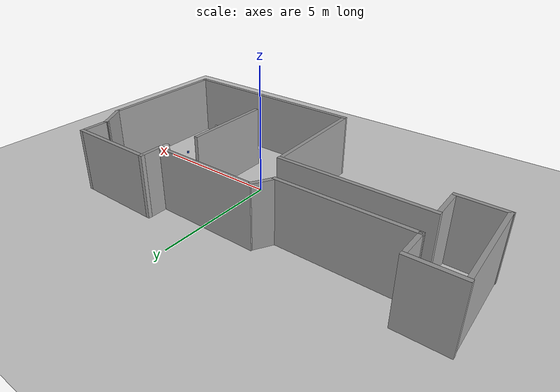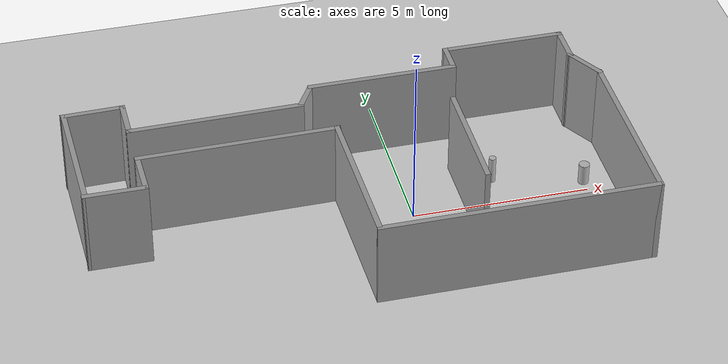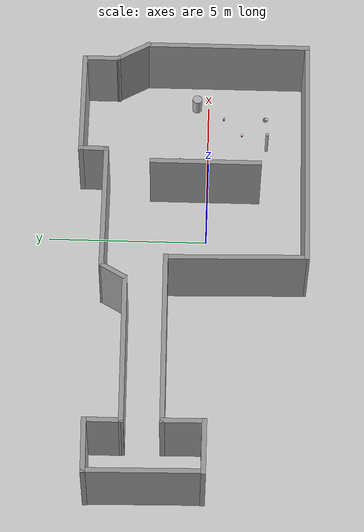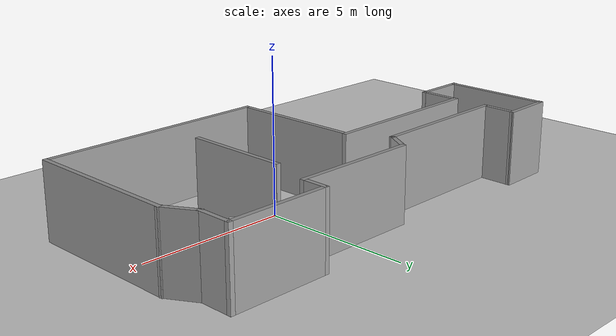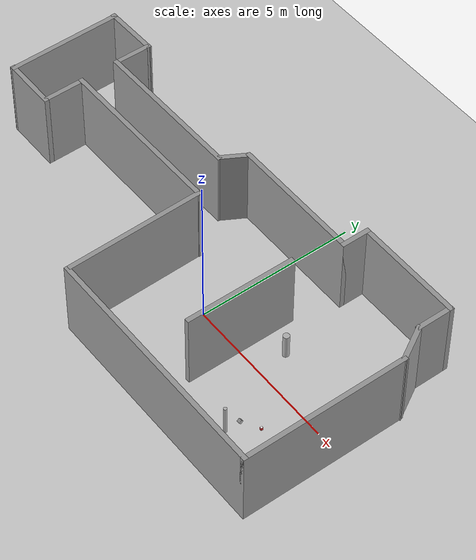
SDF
<sdf version='1.10'>
  <world name='default'>
    <plugin name='gz::sim::systems::Physics' filename='gz-sim-physics-system'/>
    <plugin name='gz::sim::systems::UserCommands' filename='gz-sim-user-commands-system'/>
    <plugin name='gz::sim::systems::SceneBroadcaster' filename='gz-sim-scene-broadcaster-system'/>
    <plugin name='gz::sim::systems::Sensors' filename='gz-sim-sensors-system'>
      <render_engine>ogre2</render_engine>
    </plugin>
    <plugin name='gz::sim::systems::Imu' filename='gz-sim-imu-system'/>
    <scene>
      <shadows>false</shadows>
      <ambient>0.400000006 0.400000006 0.400000006 1</ambient>
      <background>0.699999988 0.699999988 0.699999988 1</background>
    </scene>
    <physics name='3ms' type='ode'>
      <max_step_size>0.0030000000000000001</max_step_size>
      <real_time_factor>1</real_time_factor>
      <real_time_update_rate>1000</real_time_update_rate>
    </physics>
    <gravity>0 0 -9.8000000000000007</gravity>
    <magnetic_field>5.5644999999999998e-06 2.2875799999999999e-05 -4.2388400000000002e-05</magnetic_field>
    <atmosphere type='adiabatic'/>
    <model name='ground_plane'>
      <static>true</static>
      <link name='link'>
        <collision name='collision'>
          <geometry>
            <plane>
              <normal>0 0 1</normal>
              <size>100 100</size>
            </plane>
          </geometry>
          <max_contacts>10</max_contacts>
          <surface>
            <friction>
              <ode/>
            </friction>
            <bounce/>
            <contact/>
          </surface>
        </collision>
        <visual name='visual'>
          <geometry>
            <plane>
              <normal>0 0 1</normal>
              <size>100 100</size>
            </plane>
          </geometry>
          <material>
            <ambient>0.800000012 0.800000012 0.800000012 1</ambient>
            <diffuse>0.800000012 0.800000012 0.800000012 1</diffuse>
            <specular>0.800000012 0.800000012 0.800000012 1</specular>
          </material>
        </visual>
        <pose>0 0 0 0 0 0</pose>
        <inertial>
          <pose>0 0 0 0 0 0</pose>
          <mass>1</mass>
          <inertia>
            <ixx>1</ixx>
            <ixy>0</ixy>
            <ixz>0</ixz>
            <iyy>1</iyy>
            <iyz>0</iyz>
            <izz>1</izz>
          </inertia>
        </inertial>
        <enable_wind>false</enable_wind>
      </link>
      <pose>0 0 0 0 0 0</pose>
      <self_collide>false</self_collide>
    </model>
    <model name='room_walls'>
      <pose>-1.5562999999999976 0.44893100000000397 0 0 0 7.7715611723760958e-16</pose>
      <link name='Wall_1'>
        <collision name='Wall_1_Collision'>
          <geometry>
            <box>
              <size>1.2 0.14999999999999999 2.5</size>
            </box>
          </geometry>
          <pose>0 0 1.25 0 0 0</pose>
          <surface>
            <friction>
              <ode/>
            </friction>
            <bounce/>
            <contact/>
          </surface>
        </collision>
        <visual name='Wall_1_Visual'>
          <pose>0 0 1.25 0 0 0</pose>
          <geometry>
            <box>
              <size>1.2 0.14999999999999999 2.5</size>
            </box>
          </geometry>
          <material>
            <script>
              <uri>file://media/materials/scripts/gazebo.material</uri>
              <name>Gazebo/Grey</name>
            </script>
            <ambient>1 1 1 1</ambient>
          </material>
          <meta>
            <layer>0</layer>
          </meta>
        </visual>
        <pose>-5.7910700000000004 2.4936799999999999 0 0 0 1.5708</pose>
        <inertial>
          <pose>0 0 0 0 0 0</pose>
          <mass>1</mass>
          <inertia>
            <ixx>1</ixx>
            <ixy>0</ixy>
            <ixz>0</ixz>
            <iyy>1</iyy>
            <iyz>0</iyz>
            <izz>1</izz>
          </inertia>
        </inertial>
        <enable_wind>false</enable_wind>
      </link>
      <link name='Wall_2'>
        <collision name='Wall_2_Collision'>
          <geometry>
            <box>
              <size>1.7925599999999999 0.14999999999999999 2.5</size>
            </box>
          </geometry>
          <pose>0 0 1.25 0 0 0</pose>
          <surface>
            <friction>
              <ode/>
            </friction>
            <bounce/>
            <contact/>
          </surface>
        </collision>
        <visual name='Wall_2_Visual'>
          <pose>0 0 1.25 0 0 0</pose>
          <geometry>
            <box>
              <size>1.7925599999999999 0.14999999999999999 2.5</size>
            </box>
          </geometry>
          <material>
            <script>
              <uri>file://media/materials/scripts/gazebo.material</uri>
              <name>Gazebo/Grey</name>
            </script>
            <ambient>1 1 1 1</ambient>
          </material>
          <meta>
            <layer>0</layer>
          </meta>
        </visual>
        <pose>-6.6121599999999994 3.0463100000000005 0 0 0 -3.1203000000000007</pose>
        <inertial>
          <pose>0 0 0 0 0 0</pose>
          <mass>1</mass>
          <inertia>
            <ixx>1</ixx>
            <ixy>0</ixy>
            <ixz>0</ixz>
            <iyy>1</iyy>
            <iyz>0</iyz>
            <izz>1</izz>
          </inertia>
        </inertial>
        <enable_wind>false</enable_wind>
      </link>
      <link name='Wall_3'>
        <collision name='Wall_3_Collision'>
          <geometry>
            <box>
              <size>3.6856499999999999 0.14999999999999999 2.5</size>
            </box>
          </geometry>
          <pose>0 0 1.25 0 0 0</pose>
          <surface>
            <friction>
              <ode/>
            </friction>
            <bounce/>
            <contact/>
          </surface>
        </collision>
        <visual name='Wall_3_Visual'>
          <pose>0 0 1.25 0 0 0</pose>
          <geometry>
            <box>
              <size>3.6856499999999999 0.14999999999999999 2.5</size>
            </box>
          </geometry>
          <material>
            <script>
              <uri>file://media/materials/scripts/gazebo.material</uri>
              <name>Gazebo/Grey</name>
            </script>
            <ambient>1 1 1 1</ambient>
          </material>
          <meta>
            <layer>0</layer>
          </meta>
        </visual>
        <pose>-7.3843400000000035 1.2612300000000016 0 0 0 -1.5545000000000004</pose>
        <inertial>
          <pose>0 0 0 0 0 0</pose>
          <mass>1</mass>
          <inertia>
            <ixx>1</ixx>
            <ixy>0</ixy>
            <ixz>0</ixz>
            <iyy>1</iyy>
            <iyz>0</iyz>
            <izz>1</izz>
          </inertia>
        </inertial>
        <enable_wind>false</enable_wind>
      </link>
      <link name='Wall_4'>
        <collision name='Wall_4_Collision'>
          <geometry>
            <box>
              <size>1.7774399999999999 0.14999999999999999 2.5</size>
            </box>
          </geometry>
          <pose>0 0 1.25 0 0 0</pose>
          <surface>
            <friction>
              <ode/>
            </friction>
            <bounce/>
            <contact/>
          </surface>
        </collision>
        <visual name='Wall_4_Visual'>
          <pose>0 0 1.25 0 0 0</pose>
          <geometry>
            <box>
              <size>1.7774399999999999 0.14999999999999999 2.5</size>
            </box>
          </geometry>
          <material>
            <script>
              <uri>file://media/materials/scripts/gazebo.material</uri>
              <name>Gazebo/Grey</name>
            </script>
            <ambient>1 1 1 1</ambient>
          </material>
          <meta>
            <layer>0</layer>
          </meta>
        </visual>
        <pose>-6.5619300000000038 -0.50898599999999883 0 0 0 -0.0032240000000007783</pose>
        <inertial>
          <pose>0 0 0 0 0 0</pose>
          <mass>1</mass>
          <inertia>
            <ixx>1</ixx>
            <ixy>0</ixy>
            <ixz>0</ixz>
            <iyy>1</iyy>
            <iyz>0</iyz>
            <izz>1</izz>
          </inertia>
        </inertial>
        <enable_wind>false</enable_wind>
      </link>
      <link name='Wall_5'>
        <collision name='Wall_5_Collision'>
          <geometry>
            <box>
              <size>1.3567199999999999 0.14999999999999999 2.5</size>
            </box>
          </geometry>
          <pose>0 0 1.25 0 0 0</pose>
          <surface>
            <friction>
              <ode/>
            </friction>
            <bounce/>
            <contact/>
          </surface>
        </collision>
        <visual name='Wall_5_Visual'>
          <pose>0 0 1.25 0 0 0</pose>
          <geometry>
            <box>
              <size>1.3567199999999999 0.14999999999999999 2.5</size>
            </box>
          </geometry>
          <material>
            <script>
              <uri>file://media/materials/scripts/gazebo.material</uri>
              <name>Gazebo/Grey</name>
            </script>
            <ambient>1 1 1 1</ambient>
          </material>
          <meta>
            <layer>0</layer>
          </meta>
        </visual>
        <pose>-5.7582700000000031 0.13679500000000056 0 0 0 1.5845999999999993</pose>
        <inertial>
          <pose>0 0 0 0 0 0</pose>
          <mass>1</mass>
          <inertia>
            <ixx>1</ixx>
            <ixy>0</ixy>
            <ixz>0</ixz>
            <iyy>1</iyy>
            <iyz>0</iyz>
            <izz>1</izz>
          </inertia>
        </inertial>
        <enable_wind>false</enable_wind>
      </link>
      <link name='Wall_6'>
        <collision name='Wall_6_Collision'>
          <geometry>
            <box>
              <size>5.6466399999999997 0.14999999999999999 2.5</size>
            </box>
          </geometry>
          <pose>0 0 1.25 0 0 0</pose>
          <surface>
            <friction>
              <ode/>
            </friction>
            <bounce/>
            <contact/>
          </surface>
        </collision>
        <visual name='Wall_6_Visual'>
          <pose>0 0 1.25 0 0 0</pose>
          <geometry>
            <box>
              <size>5.6466399999999997 0.14999999999999999 2.5</size>
            </box>
          </geometry>
          <material>
            <script>
              <uri>file://media/materials/scripts/gazebo.material</uri>
              <name>Gazebo/Grey</name>
            </script>
            <ambient>1 1 1 1</ambient>
          </material>
          <meta>
            <layer>0</layer>
          </meta>
        </visual>
        <pose>-3.0200900000000019 0.76639699999999833 0 0 0 0.0077959999999992202</pose>
        <inertial>
          <pose>0 0 0 0 0 0</pose>
          <mass>1</mass>
          <inertia>
            <ixx>1</ixx>
            <ixy>0</ixy>
            <ixz>0</ixz>
            <iyy>1</iyy>
            <iyz>0</iyz>
            <izz>1</izz>
          </inertia>
        </inertial>
        <enable_wind>false</enable_wind>
      </link>
      <link name='Wall_7'>
        <collision name='Wall_7_Collision'>
          <geometry>
            <box>
              <size>4.3899800000000004 0.14999999999999999 2.5</size>
            </box>
          </geometry>
          <pose>0 0 1.25 0 0 0</pose>
          <surface>
            <friction>
              <ode/>
            </friction>
            <bounce/>
            <contact/>
          </surface>
        </collision>
        <visual name='Wall_7_Visual'>
          <pose>0 0 1.25 0 0 0</pose>
          <geometry>
            <box>
              <size>4.3899800000000004 0.14999999999999999 2.5</size>
            </box>
          </geometry>
          <material>
            <script>
              <uri>file://media/materials/scripts/gazebo.material</uri>
              <name>Gazebo/Grey</name>
            </script>
            <ambient>1 1 1 1</ambient>
          </material>
          <meta>
            <layer>0</layer>
          </meta>
        </visual>
        <pose>-0.24229100000000492 -1.3416200000000038 0 0 0 -1.5489100000000007</pose>
        <inertial>
          <pose>0 0 0 0 0 0</pose>
          <mass>1</mass>
          <inertia>
            <ixx>1</ixx>
            <ixy>0</ixy>
            <ixz>0</ixz>
            <iyy>1</iyy>
            <iyz>0</iyz>
            <izz>1</izz>
          </inertia>
        </inertial>
        <enable_wind>false</enable_wind>
      </link>
      <link name='Wall_8'>
        <collision name='Wall_8_Collision'>
          <geometry>
            <box>
              <size>7.75 0.14999999999999999 2.5</size>
            </box>
          </geometry>
          <pose>0 0 1.25 0 0 0</pose>
          <surface>
            <friction>
              <ode/>
            </friction>
            <bounce/>
            <contact/>
          </surface>
        </collision>
        <visual name='Wall_8_Visual'>
          <pose>0 0 1.25 0 0 0</pose>
          <geometry>
            <box>
              <size>7.75 0.14999999999999999 2.5</size>
            </box>
          </geometry>
          <material>
            <script>
              <uri>file://media/materials/scripts/gazebo.material</uri>
              <name>Gazebo/Grey</name>
            </script>
            <ambient>1 1 1 1</ambient>
          </material>
          <meta>
            <layer>0</layer>
          </meta>
        </visual>
        <pose>3.607389999999993 -3.5510700000000068 0 0 0 -7.7715611723760958e-16</pose>
        <inertial>
          <pose>0 0 0 0 0 0</pose>
          <mass>1</mass>
          <inertia>
            <ixx>1</ixx>
            <ixy>0</ixy>
            <ixz>0</ixz>
            <iyy>1</iyy>
            <iyz>0</iyz>
            <izz>1</izz>
          </inertia>
        </inertial>
        <enable_wind>false</enable_wind>
      </link>
      <link name='Wall_9'>
        <collision name='Wall_9_Collision'>
          <geometry>
            <box>
              <size>5.25 0.14999999999999999 2.5</size>
            </box>
          </geometry>
          <pose>0 0 1.25 0 0 0</pose>
          <surface>
            <friction>
              <ode/>
            </friction>
            <bounce/>
            <contact/>
          </surface>
        </collision>
        <visual name='Wall_9_Visual'>
          <pose>0 0 1.25 0 0 0</pose>
          <geometry>
            <box>
              <size>5.25 0.14999999999999999 2.5</size>
            </box>
          </geometry>
          <material>
            <script>
              <uri>file://media/materials/scripts/gazebo.material</uri>
              <name>Gazebo/Grey</name>
            </script>
            <ambient>1 1 1 1</ambient>
          </material>
          <meta>
            <layer>0</layer>
          </meta>
        </visual>
        <pose>7.4073899999999959 -1.0010700000000092 0 0 0 1.5707999999999998</pose>
        <inertial>
          <pose>0 0 0 0 0 0</pose>
          <mass>1</mass>
          <inertia>
            <ixx>1</ixx>
            <ixy>0</ixy>
            <ixz>0</ixz>
            <iyy>1</iyy>
            <iyz>0</iyz>
            <izz>1</izz>
          </inertia>
        </inertial>
        <enable_wind>false</enable_wind>
      </link>
      <link name='Wall_10'>
        <collision name='Wall_10_Collision'>
          <geometry>
            <box>
              <size>1.25 0.14999999999999999 2.5</size>
            </box>
          </geometry>
          <pose>0 0 1.25 0 0 0</pose>
          <surface>
            <friction>
              <ode/>
            </friction>
            <bounce/>
            <contact/>
          </surface>
        </collision>
        <visual name='Wall_10_Visual'>
          <pose>0 0 1.25 0 0 0</pose>
          <geometry>
            <box>
              <size>1.25 0.14999999999999999 2.5</size>
            </box>
          </geometry>
          <material>
            <script>
              <uri>file://media/materials/scripts/gazebo.material</uri>
              <name>Gazebo/Grey</name>
            </script>
            <ambient>1 1 1 1</ambient>
          </material>
          <meta>
            <layer>0</layer>
          </meta>
        </visual>
        <pose>7.1323899999999973 2.0252399999999899 0 0 0 2.0943999999999989</pose>
        <inertial>
          <pose>0 0 0 0 0 0</pose>
          <mass>1</mass>
          <inertia>
            <ixx>1</ixx>
            <ixy>0</ixy>
            <ixz>0</ixz>
            <iyy>1</iyy>
            <iyz>0</iyz>
            <izz>1</izz>
          </inertia>
        </inertial>
        <enable_wind>false</enable_wind>
      </link>
      <link name='Wall_11'>
        <collision name='Wall_11_Collision'>
          <geometry>
            <box>
              <size>1.2011400000000001 0.14999999999999999 2.5</size>
            </box>
          </geometry>
          <pose>0 0 1.25 0 0 0</pose>
          <surface>
            <friction>
              <ode/>
            </friction>
            <bounce/>
            <contact/>
          </surface>
        </collision>
        <visual name='Wall_11_Visual'>
          <pose>0 0 1.25 0 0 0</pose>
          <geometry>
            <box>
              <size>1.2011400000000001 0.14999999999999999 2.5</size>
            </box>
          </geometry>
          <material>
            <script>
              <uri>file://media/materials/scripts/gazebo.material</uri>
              <name>Gazebo/Grey</name>
            </script>
            <ambient>1 1 1 1</ambient>
          </material>
          <meta>
            <layer>0</layer>
          </meta>
        </visual>
        <pose>6.8573899999999988 3.0271299999999899 0 0 0 1.5707999999999998</pose>
        <inertial>
          <pose>0 0 0 0 0 0</pose>
          <mass>1</mass>
          <inertia>
            <ixx>1</ixx>
            <ixy>0</ixy>
            <ixz>0</ixz>
            <iyy>1</iyy>
            <iyz>0</iyz>
            <izz>1</izz>
          </inertia>
        </inertial>
        <enable_wind>false</enable_wind>
      </link>
      <link name='Wall_12'>
        <collision name='Wall_12_Collision'>
          <geometry>
            <box>
              <size>3.5 0.14999999999999999 2.5</size>
            </box>
          </geometry>
          <pose>0 0 1.25 0 0 0</pose>
          <surface>
            <friction>
              <ode/>
            </friction>
            <bounce/>
            <contact/>
          </surface>
        </collision>
        <visual name='Wall_12_Visual'>
          <pose>0 0 1.25 0 0 0</pose>
          <geometry>
            <box>
              <size>3.5 0.14999999999999999 2.5</size>
            </box>
          </geometry>
          <material>
            <script>
              <uri>file://media/materials/scripts/gazebo.material</uri>
              <name>Gazebo/Grey</name>
            </script>
            <ambient>1 1 1 1</ambient>
          </material>
          <meta>
            <layer>0</layer>
          </meta>
        </visual>
        <pose>5.1823899999999981 3.5526899999999912 0 0 0 3.141589999999999</pose>
        <inertial>
          <pose>0 0 0 0 0 0</pose>
          <mass>1</mass>
          <inertia>
            <ixx>1</ixx>
            <ixy>0</ixy>
            <ixz>0</ixz>
            <iyy>1</iyy>
            <iyz>0</iyz>
            <izz>1</izz>
          </inertia>
        </inertial>
        <enable_wind>false</enable_wind>
      </link>
      <link name='Wall_13'>
        <collision name='Wall_13_Collision'>
          <geometry>
            <box>
              <size>0.95113599999999998 0.14999999999999999 2.5</size>
            </box>
          </geometry>
          <pose>0 0 1.25 0 0 0</pose>
          <surface>
            <friction>
              <ode/>
            </friction>
            <bounce/>
            <contact/>
          </surface>
        </collision>
        <visual name='Wall_13_Visual'>
          <pose>0 0 1.25 0 0 0</pose>
          <geometry>
            <box>
              <size>0.95113599999999998 0.14999999999999999 2.5</size>
            </box>
          </geometry>
          <material>
            <script>
              <uri>file://media/materials/scripts/gazebo.material</uri>
              <name>Gazebo/Grey</name>
            </script>
            <ambient>1 1 1 1</ambient>
          </material>
          <meta>
            <layer>0</layer>
          </meta>
        </visual>
        <pose>3.5073899999999982 3.1521299999999925 0 0 0 -1.5708000000000011</pose>
        <inertial>
          <pose>0 0 0 0 0 0</pose>
          <mass>1</mass>
          <inertia>
            <ixx>1</ixx>
            <ixy>0</ixy>
            <ixz>0</ixz>
            <iyy>1</iyy>
            <iyz>0</iyz>
            <izz>1</izz>
          </inertia>
        </inertial>
        <enable_wind>false</enable_wind>
      </link>
      <link name='Wall_14'>
        <collision name='Wall_14_Collision'>
          <geometry>
            <box>
              <size>4.25 0.14999999999999999 2.5</size>
            </box>
          </geometry>
          <pose>0 0 1.25 0 0 0</pose>
          <surface>
            <friction>
              <ode/>
            </friction>
            <bounce/>
            <contact/>
          </surface>
        </collision>
        <visual name='Wall_14_Visual'>
          <pose>0 0 1.25 0 0 0</pose>
          <geometry>
            <box>
              <size>4.25 0.14999999999999999 2.5</size>
            </box>
          </geometry>
          <material>
            <script>
              <uri>file://media/materials/scripts/gazebo.material</uri>
              <name>Gazebo/Grey</name>
            </script>
            <ambient>1 1 1 1</ambient>
          </material>
          <meta>
            <layer>0</layer>
          </meta>
        </visual>
        <pose>1.4573899999999982 2.7515599999999942 0 0 0 3.141589999999999</pose>
        <inertial>
          <pose>0 0 0 0 0 0</pose>
          <mass>1</mass>
          <inertia>
            <ixx>1</ixx>
            <ixy>0</ixy>
            <ixz>0</ixz>
            <iyy>1</iyy>
            <iyz>0</iyz>
            <izz>1</izz>
          </inertia>
        </inertial>
        <enable_wind>false</enable_wind>
      </link>
      <link name='Wall_15'>
        <collision name='Wall_15_Collision'>
          <geometry>
            <box>
              <size>0.90000000000000002 0.14999999999999999 2.5</size>
            </box>
          </geometry>
          <pose>0 0 1.25 0 0 0</pose>
          <surface>
            <friction>
              <ode/>
            </friction>
            <bounce/>
            <contact/>
          </surface>
        </collision>
        <visual name='Wall_15_Visual'>
          <pose>0 0 1.25 0 0 0</pose>
          <geometry>
            <box>
              <size>0.90000000000000002 0.14999999999999999 2.5</size>
            </box>
          </geometry>
          <material>
            <script>
              <uri>file://media/materials/scripts/gazebo.material</uri>
              <name>Gazebo/Grey</name>
            </script>
            <ambient>1 1 1 1</ambient>
          </material>
          <meta>
            <layer>0</layer>
          </meta>
        </visual>
        <pose>-0.80511200000000205 2.3834999999999962 0 0 0 -2.0944000000000007</pose>
        <inertial>
          <pose>0 0 0 0 0 0</pose>
          <mass>1</mass>
          <inertia>
            <ixx>1</ixx>
            <ixy>0</ixy>
            <ixz>0</ixz>
            <iyy>1</iyy>
            <iyz>0</iyz>
            <izz>1</izz>
          </inertia>
        </inertial>
        <enable_wind>false</enable_wind>
      </link>
      <link name='Wall_16'>
        <collision name='Wall_16_Collision'>
          <geometry>
            <box>
              <size>4.9237299999999999 0.14999999999999999 2.5</size>
            </box>
          </geometry>
          <pose>0 0 1.25 0 0 0</pose>
          <surface>
            <friction>
              <ode/>
            </friction>
            <bounce/>
            <contact/>
          </surface>
        </collision>
        <visual name='Wall_16_Visual'>
          <pose>0 0 1.25 0 0 0</pose>
          <geometry>
            <box>
              <size>4.9237299999999999 0.14999999999999999 2.5</size>
            </box>
          </geometry>
          <material>
            <script>
              <uri>file://media/materials/scripts/gazebo.material</uri>
              <name>Gazebo/Grey</name>
            </script>
            <ambient>1 1 1 1</ambient>
          </material>
          <meta>
            <layer>0</layer>
          </meta>
        </visual>
        <pose>-3.4043400000000017 1.9896199999999977 0 0 0 -3.1307700000000009</pose>
        <inertial>
          <pose>0 0 0 0 0 0</pose>
          <mass>1</mass>
          <inertia>
            <ixx>1</ixx>
            <ixy>0</ixy>
            <ixz>0</ixz>
            <iyy>1</iyy>
            <iyz>0</iyz>
            <izz>1</izz>
          </inertia>
        </inertial>
        <enable_wind>false</enable_wind>
      </link>
      <link name='Wall_17'>
        <collision name='Wall_17_Collision'>
          <geometry>
            <box>
              <size>3.5 0.14999999999999999 2.5</size>
            </box>
          </geometry>
          <pose>0 0 1.25 0 0 0</pose>
          <surface>
            <friction>
              <ode/>
            </friction>
            <bounce/>
            <contact/>
          </surface>
        </collision>
        <visual name='Wall_17_Visual'>
          <pose>0 0 1.25 0 0 0</pose>
          <geometry>
            <box>
              <size>3.5 0.14999999999999999 2.5</size>
            </box>
          </geometry>
          <material>
            <script>
              <uri>file://media/materials/scripts/gazebo.material</uri>
              <name>Gazebo/Grey</name>
            </script>
            <ambient>1 1 1 1</ambient>
          </material>
          <meta>
            <layer>0</layer>
          </meta>
        </visual>
        <pose>3.1087499999999957 -0.3783420000000064 0 0 0 -1.5708000000000011</pose>
        <inertial>
          <pose>0 0 0 0 0 0</pose>
          <mass>1</mass>
          <inertia>
            <ixx>1</ixx>
            <ixy>0</ixy>
            <ixz>0</ixz>
            <iyy>1</iyy>
            <iyz>0</iyz>
            <izz>1</izz>
          </inertia>
        </inertial>
        <enable_wind>false</enable_wind>
      </link>
      <static>true</static>
      <self_collide>false</self_collide>
    </model>
    <model name='external_camera'>
      <static>true</static>
      <link name='link'>
        <pose>4.0300000000000002 -1.8300000000000001 1 -1.7860444350881736e-16 0.89999999999999991 1.6499999999999997</pose>
        <inertial>
          <mass>0.10000000000000001</mass>
          <inertia>
            <ixx>0.00016666700000000001</ixx>
            <iyy>0.00016666700000000001</iyy>
            <izz>0.00016666700000000001</izz>
            <ixy>0</ixy>
            <ixz>0</ixz>
            <iyz>0</iyz>
          </inertia>
          <pose>0 0 0 0 0 0</pose>
        </inertial>
        <collision name='collision'>
          <geometry>
            <box>
              <size>0.10000000000000001 0.10000000000000001 0.10000000000000001</size>
            </box>
          </geometry>
          <surface>
            <friction>
              <ode/>
            </friction>
            <bounce/>
            <contact/>
          </surface>
        </collision>
        <visual name='visual'>
          <geometry>
            <box>
              <size>0.10000000000000001 0.10000000000000001 0.10000000000000001</size>
            </box>
          </geometry>
        </visual>
        <sensor name='depth_camera' type='depth_camera'>
          <pose>0 -8.8817841970012523e-16 -2.2204460492503131e-16 0 0 0</pose>
          <topic>__default__</topic>
          <update_rate>30</update_rate>
          <enable_metrics>false</enable_metrics>
          <camera name='__default__'>
            <pose>0 0 0 0 0 0</pose>
            <horizontal_fov>1.0469999999999999</horizontal_fov>
            <image>
              <width>1280</width>
              <height>720</height>
              <format>RGB_INT8</format>
              <anti_aliasing>4</anti_aliasing>
            </image>
            <camera_info_topic>__default__</camera_info_topic>
            <trigger_topic></trigger_topic>
            <triggered>false</triggered>
            <clip>
              <near>0.10000000000000001</near>
              <far>100</far>
            </clip>
            <save enabled='false'>
              <path>__default__</path>
            </save>
            <visibility_mask>4294967295</visibility_mask>
            <noise>
              <type>none</type>
              <mean>0</mean>
              <stddev>0</stddev>
            </noise>
            <distortion>
              <k1>0</k1>
              <k2>0</k2>
              <k3>0</k3>
              <p1>0</p1>
              <p2>0</p2>
              <center>0.5 0.5</center>
            </distortion>
            <lens>
              <type>stereographic</type>
              <scale_to_hfov>true</scale_to_hfov>
              <cutoff_angle>1.5707963267948966</cutoff_angle>
              <env_texture_size>256</env_texture_size>
            </lens>
            <optical_frame_id></optical_frame_id>
          </camera>
        </sensor>
        <sensor name='rgb_camera' type='camera'>
          <pose>0 -8.8817841970012523e-16 -2.2204460492503131e-16 0 0 0</pose>
          <topic>__default__</topic>
          <update_rate>30</update_rate>
          <enable_metrics>false</enable_metrics>
          <camera name='__default__'>
            <pose>0 0 0 0 0 0</pose>
            <horizontal_fov>1.0469999999999999</horizontal_fov>
            <image>
              <width>1280</width>
              <height>720</height>
              <format>RGB_INT8</format>
              <anti_aliasing>4</anti_aliasing>
            </image>
            <camera_info_topic>__default__</camera_info_topic>
            <trigger_topic></trigger_topic>
            <triggered>false</triggered>
            <clip>
              <near>0.10000000000000001</near>
              <far>100</far>
            </clip>
            <save enabled='false'>
              <path>__default__</path>
            </save>
            <visibility_mask>4294967295</visibility_mask>
            <noise>
              <type>none</type>
              <mean>0</mean>
              <stddev>0</stddev>
            </noise>
            <distortion>
              <k1>0</k1>
              <k2>0</k2>
              <k3>0</k3>
              <p1>0</p1>
              <p2>0</p2>
              <center>0.5 0.5</center>
            </distortion>
            <lens>
              <type>stereographic</type>
              <scale_to_hfov>true</scale_to_hfov>
              <cutoff_angle>1.5707963267948966</cutoff_angle>
              <env_texture_size>256</env_texture_size>
            </lens>
            <optical_frame_id></optical_frame_id>
          </camera>
        </sensor>
        <enable_wind>false</enable_wind>
      </link>
      <pose>0 0 -1.3322676295501878e-15 -5.5511151231257827e-17 -1.1102230246251565e-16 3.0814879110195774e-33</pose>
      <self_collide>false</self_collide>
    </model>
    <model name='blue_cube_on_table2'>
      <pose>4.5999999999999996 -0.5 0.049999590483131233 3.6573274790611021e-17 2.8894009432597525e-17 -3.0923348255578463e-21</pose>
      <link name='blue_cube_link'>
        <inertial>
          <mass>2</mass>
          <pose>0 0 0 0 0 0</pose>
          <inertia>
            <ixx>1</ixx>
            <ixy>0</ixy>
            <ixz>0</ixz>
            <iyy>1</iyy>
            <iyz>0</iyz>
            <izz>1</izz>
          </inertia>
        </inertial>
        <collision name='collision'>
          <geometry>
            <box>
              <size>0.059999999999999998 0.059999999999999998 0.10000000000000001</size>
            </box>
          </geometry>
          <surface>
            <friction>
              <ode/>
            </friction>
            <bounce/>
            <contact/>
          </surface>
        </collision>
        <visual name='visual'>
          <geometry>
            <box>
              <size>0.059999999999999998 0.059999999999999998 0.10000000000000001</size>
            </box>
          </geometry>
          <material>
            <script>
              <name>Gazebo/Blue</name>
              <uri>file://media/materials/scripts/gazebo.material</uri>
            </script>
          </material>
        </visual>
        <pose>0 0 0 0 0 0</pose>
        <enable_wind>false</enable_wind>
      </link>
      <link name='tag10'>
        <pose>0 0 0.051000000000000052 0 5.654840565986132e-38 0</pose>
        <collision name='tag_collision'>
          <geometry>
            <box>
              <size>0.059999999999999998 0.065000000000000002 0.001</size>
            </box>
          </geometry>
          <surface>
            <friction>
              <ode/>
            </friction>
            <bounce/>
            <contact/>
          </surface>
        </collision>
        <visual name='tag_visual'>
          <geometry>
            <box>
              <size>0.065000000000000002 0.065000000000000002 0.001</size>
            </box>
          </geometry>
          <material>
            <ambient>1 1 1 1</ambient>
            <diffuse>1 1 1 1</diffuse>
            <pbr>
              <metal>
                <albedo_map>model://ir_base/models/artag/materials/textures/tag36_11_00010.png</albedo_map>
              </metal>
            </pbr>
          </material>
        </visual>
        <inertial>
          <pose>0 0 0 0 0 0</pose>
          <mass>1</mass>
          <inertia>
            <ixx>1</ixx>
            <ixy>0</ixy>
            <ixz>0</ixz>
            <iyy>1</iyy>
            <iyz>0</iyz>
            <izz>1</izz>
          </inertia>
        </inertial>
        <enable_wind>false</enable_wind>
      </link>
      <joint name='blue_cube_tag10' type='fixed'>
        <parent>blue_cube_link</parent>
        <child>tag10</child>
        <pose>0 0 0 0 0 0</pose>
      </joint>
      <static>false</static>
      <self_collide>false</self_collide>
    </model>
    <model name='red_cube_on_table'>
      <pose>4 -1.1000000000000001 0.049999590483156241 6.2334148281186397e-17 2.1615115945982451e-18 7.9446164822195491e-22</pose>
      <link name='red_cube_link'>
        <inertial>
          <mass>2</mass>
          <pose>0 0 0 0 0 0</pose>
          <inertia>
            <ixx>1</ixx>
            <ixy>0</ixy>
            <ixz>0</ixz>
            <iyy>1</iyy>
            <iyz>0</iyz>
            <izz>1</izz>
          </inertia>
        </inertial>
        <collision name='collision'>
          <geometry>
            <box>
              <size>0.059999999999999998 0.059999999999999998 0.10000000000000001</size>
            </box>
          </geometry>
          <surface>
            <friction>
              <ode/>
            </friction>
            <bounce/>
            <contact/>
          </surface>
        </collision>
        <visual name='visual'>
          <geometry>
            <box>
              <size>0.059999999999999998 0.059999999999999998 0.10000000000000001</size>
            </box>
          </geometry>
          <material>
            <script>
              <name>Gazebo/Red</name>
              <uri>file://media/materials/scripts/gazebo.material</uri>
            </script>
          </material>
        </visual>
        <pose>0 0 0 0 0 0</pose>
        <enable_wind>false</enable_wind>
      </link>
      <link name='tag01'>
        <pose>0 0 0.051000000000000045 0 -2.4761045091989443e-38 0</pose>
        <collision name='tag_collision'>
          <geometry>
            <box>
              <size>0.059999999999999998 0.059999999999999998 0.001</size>
            </box>
          </geometry>
          <surface>
            <friction>
              <ode/>
            </friction>
            <bounce/>
            <contact/>
          </surface>
        </collision>
        <visual name='tag_visual'>
          <geometry>
            <box>
              <size>0.065000000000000002 0.065000000000000002 0.001</size>
            </box>
          </geometry>
          <material>
            <ambient>1 1 1 1</ambient>
            <diffuse>1 1 1 1</diffuse>
            <pbr>
              <metal>
                <albedo_map>model://ir_base/models/artag/materials/textures/tag36_11_00001.png</albedo_map>
              </metal>
            </pbr>
          </material>
        </visual>
        <inertial>
          <pose>0 0 0 0 0 0</pose>
          <mass>1</mass>
          <inertia>
            <ixx>1</ixx>
            <ixy>0</ixy>
            <ixz>0</ixz>
            <iyy>1</iyy>
            <iyz>0</iyz>
            <izz>1</izz>
          </inertia>
        </inertial>
        <enable_wind>false</enable_wind>
      </link>
      <joint name='red_cube_tag01' type='fixed'>
        <parent>red_cube_link</parent>
        <child>tag01</child>
        <pose>0 0 0 0 0 0</pose>
      </joint>
      <static>false</static>
      <self_collide>false</self_collide>
    </model>

    <model name='table1'>
      <pose>2.4843748187672148 0.89348019019682656 0.49999957929137095 -4.666695556213953e-18 1.9613610002045654e-19 5.5542571216443832e-20</pose>
      <link name='table1_link'>
        <inertial>
          <inertia>
            <ixx>0.14580000000000001</ixx>
            <ixy>0</ixy>
            <ixz>0</ixz>
            <iyy>0.14580000000000001</iyy>
            <iyz>0</iyz>
            <izz>0.125</izz>
          </inertia>
          <mass>1</mass>
          <pose>0 0 0 0 0 0</pose>
        </inertial>
        <collision name='table1_collision'>
          <geometry>
            <cylinder>
              <radius>0.1</radius>
              <length>0.8</length>
            </cylinder>
          </geometry>
          <surface>
            <friction>
              <ode/>
            </friction>
            <bounce/>
            <contact/>
          </surface>
        </collision>
        <visual name='table1_visual'>
          <geometry>
            <cylinder>
              <radius>0.1</radius>
              <length>0.8</length>
            </cylinder>
          </geometry>
          <material>
            <ambient>0.300000012 0.300000012 0.300000012 1</ambient>
            <diffuse>0.699999988 0.699999988 0.699999988 1</diffuse>
            <specular>1 1 1 1</specular>
          </material>
        </visual>
        <pose>0 0 0 0 0 0</pose>
        <enable_wind>false</enable_wind>
      </link>
      <static>true</static>
      <self_collide>false</self_collide>
    </model>
     <model name='table2'>
      <pose>5 0.38 0 0 0 0</pose>
      <link name='table2_link'>
        <inertial>
          <inertia>
            <ixx>0.14580000000000001</ixx>
            <ixy>0</ixy>
            <ixz>0</ixz>
            <iyy>0.14580000000000001</iyy>
            <iyz>0</iyz>
            <izz>0.125</izz>
          </inertia>
          <mass>1</mass>
          <pose>0 0 0 0 0 0</pose>
        </inertial>
        <collision name='table2_collision'>
          <geometry>
            <cylinder>
              <radius>0.15</radius>
              <length>1.2</length>
            </cylinder>
          </geometry>
          <surface>
            <friction>
              <ode/>
            </friction>
            <bounce/>
            <contact/>
          </surface>
        </collision>
        <visual name='table2_visual'>
          <geometry>
            <cylinder>
              <radius>0.15</radius>
              <length>1.2</length>
            </cylinder>
          </geometry>
          <material>
            <ambient>0.300000012 0.300000012 0.300000012 1</ambient>
            <diffuse>0.699999988 0.699999988 0.699999988 1</diffuse>
            <specular>1 1 1 1</specular>
          </material>
        </visual>
        <pose>0 0 0 0 0 0</pose>
        <enable_wind>false</enable_wind>
      </link>
      <static>true</static>
      <self_collide>false</self_collide>
    </model>
     <model name='table3'>
      <pose>3.4843748187672148 -1.89348019019682656 0.49999957929137095 -4.666695556213953e-18 1.9613610002045654e-19 5.5542571216443832e-20</pose>
      <link name='table3_link'>
        <inertial>
          <inertia>
            <ixx>0.14580000000000001</ixx>
            <ixy>0</ixy>
            <ixz>0</ixz>
            <iyy>0.14580000000000001</iyy>
            <iyz>0</iyz>
            <izz>0.125</izz>
          </inertia>
          <mass>1</mass>
          <pose>0 0 0 0 0 0</pose>
        </inertial>
        <collision name='table3_collision'>
          <geometry>
            <cylinder>
              <radius>0.05</radius>
              <length>1</length>
            </cylinder>
          </geometry>
          <surface>
            <friction>
              <ode/>
            </friction>
            <bounce/>
            <contact/>
          </surface>
        </collision>
        <visual name='table3_visual'>
          <geometry>
            <cylinder>
              <radius>0.05</radius>
              <length>1</length>
            </cylinder>
          </geometry>
          <material>
            <ambient>0.300000012 0.300000012 0.300000012 1</ambient>
            <diffuse>0.699999988 0.699999988 0.699999988 1</diffuse>
            <specular>1 1 1 1</specular>
          </material>
        </visual>
        <pose>0 0 0 0 0 0</pose>
        <enable_wind>false</enable_wind>
      </link>
      <static>true</static>
      <self_collide>false</self_collide>
    </model>
    <light name='sun' type='directional'>
      <pose>0 0 10 0 0 0</pose>
      <cast_shadows>false</cast_shadows>
      <intensity>1</intensity>
      <direction>-0.5 0.10000000000000001 -0.90000000000000002</direction>
      <diffuse>0.800000012 0.800000012 0.800000012 1</diffuse>
      <specular>0.800000012 0.800000012 0.800000012 1</specular>
      <attenuation>
        <range>1000</range>
        <linear>0.01</linear>
        <constant>0.90000000000000002</constant>
        <quadratic>0.001</quadratic>
      </attenuation>
      <spot>
        <inner_angle>0</inner_angle>
        <outer_angle>0</outer_angle>
        <falloff>0</falloff>
      </spot>
    </light>
  </world>
</sdf>
